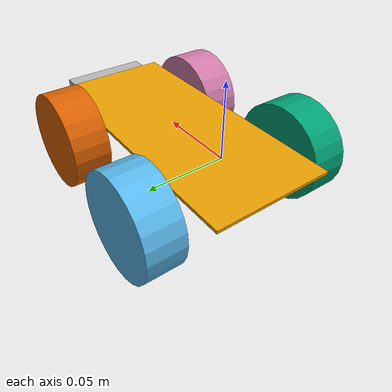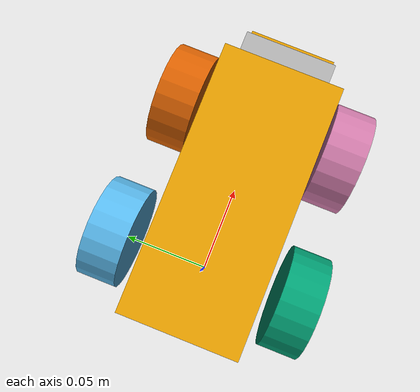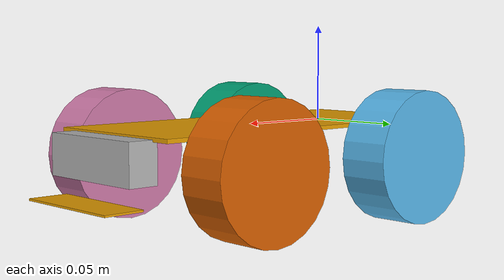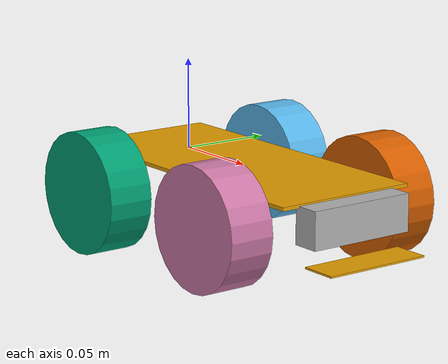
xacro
<?xml version="1.0"?>
<robot name="picar" xmlns:xacro="http://www.ros.org/wiki/xacro">

  <!-- test tf tree -->
  <!-- base link -->
  <link name="base_link">
    <visual>
      <origin xyz="0.045 0 0" />
      <geometry>
        <box size="0.18 0.08 0.002"/>
      </geometry>
    </visual>
  </link>

  <!-- rear wheels -->
  <link name="rear_left_wheel">
    <visual>
      <geometry>
        <cylinder radius="0.033" length="0.025"/>
      </geometry>
      <origin rpy="1.5708 0 0"/>
    </visual>
  </link>
  <link name="rear_right_wheel">
    <visual>
      <geometry>
        <cylinder radius="0.033" length="0.025"/>
      </geometry>
      <origin rpy="1.5708 0 0"/>
    </visual>
  </link>
  <joint name="rear_left_wheel_joint" type="continuous">
    <parent link="base_link"/>
    <child link="rear_left_wheel"/>
    <origin xyz="0 0.06 -0.015" rpy="0 0 0"/>
    <axis xyz="0 1 0"/>
  </joint>
  <joint name="rear_right_wheel_joint" type="continuous">
    <parent link="base_link"/>
    <child link="rear_right_wheel"/>
    <origin xyz="0 -0.06 -0.015" rpy="0 0 0"/>
    <axis xyz="0 1 0"/>
  </joint>

  <!-- steering axle -->
  <link name="left_axle_link"/>
  <link name="right_axle_link"/>
  <joint name="left_steering_joint" type="revolute">
    <parent link="base_link"/>
    <child link="left_axle_link"/>
    <origin xyz="0.095 0.043 -0.015" rpy="0 0 0"/>
    <axis xyz="0 0 1"/>
    <limit lower="-0.6" upper="0.6" effort="1" velocity="1"/>
  </joint>
  <joint name="right_steering_joint" type="revolute">
    <parent link="base_link"/>
    <child link="right_axle_link"/>
    <origin xyz="0.095 -0.043 -0.015" rpy="0 0 0"/>
    <axis xyz="0 0 1"/>
    <limit lower="-0.6" upper="0.6" effort="1" velocity="1"/>
  </joint>

  <!-- front wheels attached to steering axle -->
  <link name="front_left_wheel">
    <visual>
      <geometry>
        <cylinder radius="0.033" length="0.025"/>
      </geometry>
      <origin rpy="1.5708 0 0"/>
    </visual>
  </link>
  <link name="front_right_wheel">
    <visual>
      <geometry>
        <cylinder radius="0.033" length="0.025"/>
      </geometry>
      <origin rpy="1.5708 0 0"/>
    </visual>
  </link>
  <joint name="front_left_wheel_joint" type="continuous">
    <parent link="left_axle_link"/>
    <child link="front_left_wheel"/>
    <origin xyz="0 0.01 0" rpy="0 0 0"/>
    <axis xyz="0 1 0"/>
  </joint>
  <joint name="front_right_wheel_joint" type="continuous">
    <parent link="right_axle_link"/>
    <child link="front_right_wheel"/>
    <origin xyz="0 -0.01 0" rpy="0 0 0"/>
    <axis xyz="0 1 0"/>
  </joint>

  <!-- sensor positions -->
  <link name="sonar_sensor">
   <visual>
      <geometry>
        <box size="0.015 0.06 0.02"/>
      </geometry>
    </visual>
  </link>
  <joint name="sonar_sensor_joint" type="fixed">
    <parent link="base_link"/>
    <child link="sonar_sensor"/>
    <origin xyz="0.14 0 -0.01" rpy="0 0 0"/>
  </joint>
  <link name="grayscale_sensor">
   <visual>
      <geometry>
        <box size="0.06 0.02 0.001"/>
      </geometry>
    </visual>
  </link>
  <joint name="grayscale_sensor_joint" type="fixed">
    <parent link="base_link"/>
    <child link="grayscale_sensor"/>
    <origin xyz="0.15 0 -0.03" rpy="0 3.14159 1.57079"/>
  </joint>

</robot>
